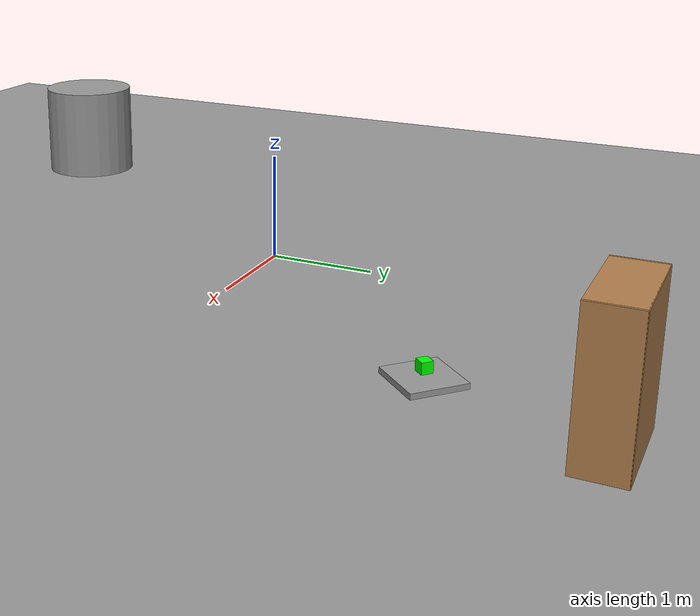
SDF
<sdf version="1.6">
 <world name="default">
  <light name="sun" type="directional">
   <pose>0 0 10 0 -0 0</pose>
   <diffuse>0.8 0.8 0.8 1</diffuse>
   <specular>0.2 0.2 0.2 1</specular>
   <attenuation>
    <range>1000</range>
    <constant>0.9</constant>
    <linear>0.01</linear>
    <quadratic>0.001</quadratic>
   </attenuation>
   <direction>0.5 0.1 -0.9</direction>
  </light>
  <scene><ambient>0.4 0.4 0.4 1</ambient><background>0.7 0.7 0.7 1</background><shadows>1</shadows></scene>
  <physics name="default_physics" default="0" type="ode">
   <max_step_size>0.01</max_step_size>
   <real_time_factor>1</real_time_factor>
   <real_time_update_rate>100</real_time_update_rate>
  </physics>
  <model name="bookshelf">
   <static>1</static>
   <link name="link">
    <inertial><mass>1</mass></inertial>
    <collision name="back">
     <pose>0 0.005 0.6 0 -0 0</pose>
     <geometry><box><size>0.9 0.01 1.2</size></box></geometry>
    </collision>
    <visual name="visual1">
     <pose>0 0.005 0.6 0 -0 0</pose>
     <geometry><box><size>0.9 0.01 1.2</size></box></geometry>
     <material>
      <script><uri>file://media/materials/scripts/gazebo.material</uri><name>Gazebo/Wood</name></script>
     </material>
    </visual>
    <collision name="left_side">
     <pose>0.45 -0.195 0.6 0 -0 0</pose>
     <geometry><box><size>0.02 0.4 1.2</size></box></geometry>
    </collision>
    <visual name="visual2">
     <pose>0.45 -0.195 0.6 0 -0 0</pose>
     <geometry><box><size>0.02 0.4 1.2</size></box></geometry>
     <material>
      <script><uri>file://media/materials/scripts/gazebo.material</uri><name>Gazebo/Wood</name></script>
     </material>
    </visual>
    <collision name="right_side">
     <pose>-0.45 -0.195 0.6 0 -0 0</pose>
     <geometry><box><size>0.02 0.4 1.2</size></box></geometry>
    </collision>
    <visual name="visual3">
     <pose>-0.45 -0.195 0.6 0 -0 0</pose>
     <geometry><box><size>0.02 0.4 1.2</size></box></geometry>
     <material>
      <script><uri>file://media/materials/scripts/gazebo.material</uri><name>Gazebo/Wood</name></script>
     </material>
    </visual>
    <collision name="bottom">
     <pose>0 -0.195 0.03 0 -0 0</pose>
     <geometry><box><size>0.88 0.4 0.06</size></box></geometry>
    </collision>
    <visual name="visual4">
     <pose>0 -0.195 0.03 0 -0 0</pose>
     <geometry><box><size>0.88 0.4 0.06</size></box></geometry>
     <material>
      <script><uri>file://media/materials/scripts/gazebo.material</uri><name>Gazebo/Wood</name></script>
     </material>
    </visual>
    <collision name="top">
     <pose>0 -0.195 1.19 0 -0 0</pose>
     <geometry><box><size>0.88 0.4 0.02</size></box></geometry>
    </collision>
    <visual name="visual5">
     <pose>0 -0.195 1.19 0 -0 0</pose>
     <geometry><box><size>0.88 0.4 0.02</size></box></geometry>
     <material>
      <script><uri>file://media/materials/scripts/gazebo.material</uri><name>Gazebo/Wood</name></script>
     </material>
    </visual>
    <collision name="low_shelf">
     <pose>0 -0.195 0.43 0 -0 0</pose>
     <geometry><box><size>0.88 0.4 0.02</size></box></geometry>
    </collision>
    <visual name="visual6">
     <pose>0 -0.195 0.43 0 -0 0</pose>
     <geometry><box><size>0.88 0.4 0.02</size></box></geometry>
     <material>
      <script><uri>file://media/materials/scripts/gazebo.material</uri><name>Gazebo/Wood</name></script>
     </material>
    </visual>
    <collision name="high_shelf">
     <pose>0 -0.195 0.8 0 -0 0</pose>
     <geometry><box><size>0.88 0.4 0.02</size></box></geometry>
    </collision>
    <visual name="visual7">
     <pose>0 -0.195 0.8 0 -0 0</pose>
     <geometry><box><size>0.88 0.4 0.02</size></box></geometry>
     <material>
      <script><uri>file://media/materials/scripts/gazebo.material</uri><name>Gazebo/Wood</name></script>
     </material>
    </visual>
    <velocity_decay><linear>0</linear><angular>0</angular></velocity_decay>
   </link>
   <pose>2.46581 3.8591 0 0 -0 0</pose>
  </model>
  <model name="ground_plane_0">
   <static>1</static>
   <link name="link">
    <collision name="collision">
     <geometry><plane><normal>0 0 1</normal><size>100 100</size></plane></geometry>
     <surface><friction><ode><mu>100</mu><mu2>50</mu2></ode></friction></surface>
    </collision>
    <visual name="visual">
     <cast_shadows>0</cast_shadows>
     <geometry><plane><normal>0 0 1</normal><size>100 100</size></plane></geometry>
     <material>
      <script><uri>file://media/materials/scripts/gazebo.material</uri><name>Gazebo/Grey</name></script>
     </material>
    </visual>
    <velocity_decay><linear>0</linear><angular>0</angular></velocity_decay>
   </link>
   <pose>0.497681 0 0 0 -0 0</pose>
  </model>
  <model name="unit_cylinder_1">
   <pose>-2 -3.4888 0.49912 0 -0 0</pose>
   <link name="link">
    <inertial>
     <mass>1</mass>
     <inertia><ixx>1</ixx><ixy>0</ixy><ixz>0</ixz><iyy>1</iyy><iyz>0</iyz><izz>1</izz></inertia>
    </inertial>
    <collision name="collision">
     <geometry><cylinder><radius>0.5</radius><length>1</length></cylinder></geometry>
    </collision>
    <visual name="visual">
     <geometry><cylinder><radius>0.5</radius><length>1</length></cylinder></geometry>
     <material>
      <script><uri>file://media/materials/scripts/gazebo.material</uri><name>Gazebo/Grey</name></script>
     </material>
    </visual>
    <velocity_decay><linear>0</linear><angular>0</angular></velocity_decay>
   </link>
   <static>0</static>
  </model>
  <gravity>0 0 -9.8</gravity>
  <magnetic_field>6e-06 2.3e-05 -4.2e-05</magnetic_field>
  <atmosphere type="adiabatic"/>
  <spherical_coordinates>
   <surface_model>EARTH_WGS84</surface_model>
   <latitude_deg>0</latitude_deg>
   <longitude_deg>0</longitude_deg>
   <elevation>0</elevation>
   <heading_deg>0</heading_deg>
  </spherical_coordinates>
  <model name="unit_box_1">
   <link name="link_0">
    <inertial>
     <mass>1</mass>
     <inertia>
      <ixx>0.166667</ixx>
      <ixy>0</ixy>
      <ixz>0</ixz>
      <iyy>0.166667</iyy>
      <iyz>0</iyz>
      <izz>0.166667</izz>
     </inertia>
    </inertial>
    <visual name="visual">
     <geometry><box><size>0.5 0.5 0.05</size></box></geometry>
     <material>
      <lighting>1</lighting>
      <script><uri>file://media/materials/scripts/gazebo.material</uri><name>Gazebo/Grey</name></script>
      <shader type="pixel"><normal_map>__default__</normal_map></shader>
      <ambient>0 0 0 1</ambient>
      <diffuse>0 0 0 1</diffuse>
      <specular>0 0 0 1</specular>
      <emissive>0 0 0 1</emissive>
     </material>
    </visual>
    <collision name="collision">
     <geometry><box><size>0.5 0.5 0.05</size></box></geometry>
     <surface>
      <friction>
       <ode><mu>1</mu><mu2>1</mu2><fdir1>0 0 0</fdir1><slip1>0</slip1><slip2>0</slip2></ode>
       <torsional>
        <coefficient>1</coefficient>
        <patch_radius>0</patch_radius>
        <surface_radius>0</surface_radius>
        <use_patch_radius>1</use_patch_radius>
        <ode><slip>0</slip></ode>
       </torsional>
      </friction>
      <bounce><restitution_coefficient>0</restitution_coefficient><threshold>1e+06</threshold></bounce>
      <contact>
       <collide_without_contact>0</collide_without_contact>
       <collide_without_contact_bitmask>1</collide_without_contact_bitmask>
       <collide_bitmask>1</collide_bitmask>
       <ode>
        <soft_cfm>0</soft_cfm>
        <soft_erp>0.2</soft_erp>
        <kp>1e+13</kp>
        <kd>1</kd>
        <max_vel>0.01</max_vel>
        <min_depth>0</min_depth>
       </ode>
       <bullet>
        <split_impulse>1</split_impulse>
        <split_impulse_penetration_threshold>-0.01</split_impulse_penetration_threshold>
        <soft_cfm>0</soft_cfm>
        <soft_erp>0.2</soft_erp>
        <kp>1e+13</kp>
        <kd>1</kd>
       </bullet>
      </contact>
     </surface>
    </collision>
   </link>
   <link name="link_clone">
    <pose>0 0 0.1 7.6e-05 -2.6e-05 0.001719</pose>
    <inertial>
     <mass>1</mass>
     <inertia>
      <ixx>0.166667</ixx>
      <ixy>0</ixy>
      <ixz>0</ixz>
      <iyy>0.166667</iyy>
      <iyz>0</iyz>
      <izz>0.166667</izz>
     </inertia>
    </inertial>
    <visual name="visual">
     <geometry><box><size>0.1 0.1 0.1</size></box></geometry>
     <material>
      <script><name>Gazebo/Grey</name><uri>file://media/materials/scripts/gazebo.material</uri></script>
      <shader type="pixel"><normal_map>__default__</normal_map></shader>
      <ambient>0 1 0 1</ambient>
      <diffuse>0 1 0 1</diffuse>
      <specular>0 1 0 1</specular>
      <emissive>0 1 0 1</emissive>
     </material>
    </visual>
    <collision name="collision">
     <geometry><box><size>0.1 0.1 0.1</size></box></geometry>
     <surface>
      <friction>
       <ode><mu>1</mu><mu2>1</mu2><fdir1>0 0 0</fdir1><slip1>0</slip1><slip2>0</slip2></ode>
       <torsional>
        <coefficient>1</coefficient>
        <patch_radius>0</patch_radius>
        <surface_radius>0</surface_radius>
        <use_patch_radius>1</use_patch_radius>
        <ode><slip>0</slip></ode>
       </torsional>
      </friction>
      <bounce><restitution_coefficient>0</restitution_coefficient><threshold>1e+06</threshold></bounce>
      <contact>
       <collide_without_contact>0</collide_without_contact>
       <collide_without_contact_bitmask>1</collide_without_contact_bitmask>
       <collide_bitmask>1</collide_bitmask>
       <ode>
        <soft_cfm>0</soft_cfm>
        <soft_erp>0.2</soft_erp>
        <kp>1e+13</kp>
        <kd>1</kd>
        <max_vel>0.01</max_vel>
        <min_depth>0</min_depth>
       </ode>
       <bullet>
        <split_impulse>1</split_impulse>
        <split_impulse_penetration_threshold>-0.01</split_impulse_penetration_threshold>
        <soft_cfm>0</soft_cfm>
        <soft_erp>0.2</soft_erp>
        <kp>1e+13</kp>
        <kd>1</kd>
       </bullet>
      </contact>
     </surface>
    </collision>
   </link>
   <joint name="link_0_JOINT_0" type="fixed">
    <parent>link_0</parent>
    <child>link_clone</child>
    <physics>
     <ode><limit><cfm>0</cfm><erp>0.2</erp></limit><suspension><cfm>0</cfm><erp>0.2</erp></suspension></ode>
    </physics>
   </joint>
   <static>0</static>
   <pose>2.00657 2.20846 0.025 0 -0 0.832061</pose>
  </model>
 </world>
</sdf>
